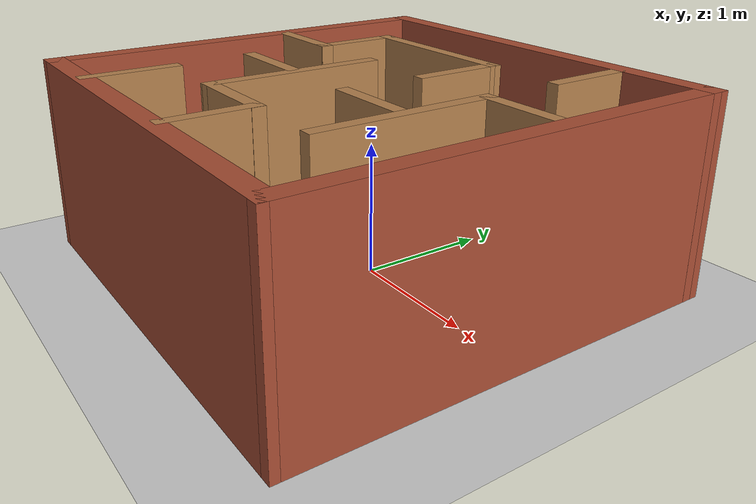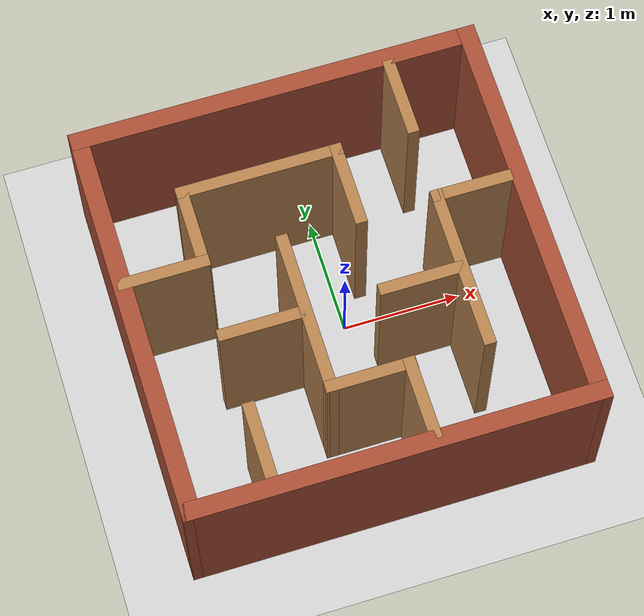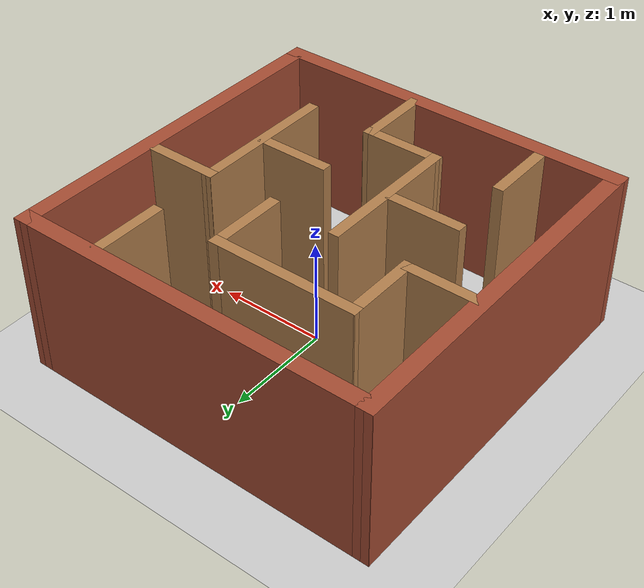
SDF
<sdf version="1.7">
 <world name="default">
  <plugin filename="gz-sim-physics-system" name="gz::sim::systems::Physics"/>
  <plugin filename="gz-sim-sensors-system" name="gz::sim::systems::Sensors">
   <render_engine>ogre2</render_engine>
  </plugin>
  <plugin filename="gz-sim-user-commands-system" name="gz::sim::systems::UserCommands"/>
  <plugin filename="gz-sim-scene-broadcaster-system" name="gz::sim::systems::SceneBroadcaster"/>
  <model name="ground_plane">
   <static>1</static>
   <link name="link">
    <collision name="collision">
     <geometry><plane><normal>0 0 1</normal><size>100 100</size></plane></geometry>
     <surface><friction><ode><mu>100</mu><mu2>50</mu2></ode></friction></surface>
    </collision>
    <visual name="visual">
     <cast_shadows>0</cast_shadows>
     <geometry><plane><normal>0 0 1</normal><size>100 100</size></plane></geometry>
     <material>
      <script><uri>file://media/materials/scripts/gazebo.material</uri><name>Gazebo/Grey</name></script>
     </material>
    </visual>
   </link>
  </model>
  <light name="sun" type="directional">
   <pose>0 0 10 0 -0 0</pose>
   <diffuse>0.8 0.8 0.8 1</diffuse>
   <specular>0.2 0.2 0.2 1</specular>
   <attenuation>
    <range>1000</range>
    <constant>0.9</constant>
    <linear>0.01</linear>
    <quadratic>0.001</quadratic>
   </attenuation>
   <direction>-0.5 0.1 -0.9</direction>
   <spot><inner_angle>0</inner_angle><outer_angle>0</outer_angle><falloff>0</falloff></spot>
  </light>
  <scene><shadows>0</shadows><ambient>0.4 0.4 0.4 1</ambient><background>0.7 0.7 0.7 1</background></scene>
  <physics type="ode">
   <real_time_update_rate>1000</real_time_update_rate>
   <max_step_size>0.001</max_step_size>
   <real_time_factor>1</real_time_factor>
   <ode>
    <solver>
     <type>quick</type>
     <iters>150</iters>
     <precon_iters>0</precon_iters>
     <sor>1.4</sor>
     <use_dynamic_moi_rescaling>1</use_dynamic_moi_rescaling>
    </solver>
    <constraints>
     <cfm>1e-05</cfm>
     <erp>0.2</erp>
     <contact_max_correcting_vel>2000</contact_max_correcting_vel>
     <contact_surface_layer>0.01</contact_surface_layer>
    </constraints>
   </ode>
  </physics>
  <gravity>0 0 -9.8</gravity>
  <magnetic_field>6e-06 2.3e-05 -4.2e-05</magnetic_field>
  <atmosphere type="adiabatic"/>
  <audio><device>default</device></audio>
  <spherical_coordinates>
   <surface_model>EARTH_WGS84</surface_model>
   <latitude_deg>0</latitude_deg>
   <longitude_deg>0</longitude_deg>
   <elevation>0</elevation>
   <heading_deg>0</heading_deg>
  </spherical_coordinates>
  <model name="mapcorreg">
   <model name="newmap">
    <link name="Wall_11">
     <collision name="Wall_11_Collision">
      <geometry><box><size>3.40462 0.15 1.5</size></box></geometry>
      <pose>0 0 0.75 0 -0 0</pose>
     </collision>
     <visual name="Wall_11_Visual">
      <pose>0 0 0.75 0 -0 0</pose>
      <geometry><box><size>3.40462 0.15 1.5</size></box></geometry>
      <material>
       <script><uri>file://media/materials/scripts/gazebo.material</uri><name>Gazebo/Bricks</name></script>
       <ambient>1 1 1 1</ambient>
      </material>
      <meta><layer>0</layer></meta>
     </visual>
     <pose>-1.64015 -0.000466 0 0 -0 -1.56953</pose>
    </link>
    <link name="Wall_14">
     <collision name="Wall_14_Collision">
      <geometry><box><size>3.40557 0.15 1.5</size></box></geometry>
      <pose>0 0 0.75 0 -0 0</pose>
     </collision>
     <visual name="Wall_14_Visual">
      <pose>0 0 0.75 0 -0 0</pose>
      <geometry><box><size>3.40557 0.15 1.5</size></box></geometry>
      <material>
       <script><uri>file://media/materials/scripts/gazebo.material</uri><name>Gazebo/Bricks</name></script>
       <ambient>1 1 1 1</ambient>
      </material>
      <meta><layer>0</layer></meta>
     </visual>
     <pose>1.64026 -0 0 0 -0 1.5696</pose>
    </link>
    <link name="Wall_15">
     <collision name="Wall_15_Collision">
      <geometry><box><size>3.4301 0.15 1.5</size></box></geometry>
      <pose>0 0 0.75 0 -0 0</pose>
     </collision>
     <visual name="Wall_15_Visual">
      <pose>0 0 0.75 0 -0 0</pose>
      <geometry><box><size>3.4301 0.15 1.5</size></box></geometry>
      <material>
       <script><uri>file://media/materials/scripts/gazebo.material</uri><name>Gazebo/Bricks</name></script>
       <ambient>1 1 1 1</ambient>
      </material>
      <meta><layer>0</layer></meta>
     </visual>
     <pose>0.002164 1.62731 0 0 -0 -3.14131</pose>
    </link>
    <link name="Wall_17">
     <collision name="Wall_17_Collision">
      <geometry><box><size>0.752829 0.1 1.5</size></box></geometry>
      <pose>0 0 0.75 0 -0 0</pose>
     </collision>
     <visual name="Wall_17_Visual">
      <pose>0 0 0.75 0 -0 0</pose>
      <geometry><box><size>0.752829 0.1 1.5</size></box></geometry>
      <material>
       <script><uri>file://media/materials/scripts/gazebo.material</uri><name>Gazebo/Wood</name></script>
       <ambient>1 1 1 1</ambient>
      </material>
      <meta><layer>0</layer></meta>
     </visual>
     <pose>-1.30426 0.31789 0 0 -0 0.000206</pose>
    </link>
    <link name="Wall_19">
     <collision name="Wall_19_Collision">
      <geometry><box><size>0.725857 0.1 1.5</size></box></geometry>
      <pose>0 0 0.75 0 -0 0</pose>
     </collision>
     <visual name="Wall_19_Visual">
      <pose>0 0 0.75 0 -0 0</pose>
      <geometry><box><size>0.725857 0.1 1.5</size></box></geometry>
      <material>
       <script><uri>file://media/materials/scripts/gazebo.material</uri><name>Gazebo/Wood</name></script>
       <ambient>1 1 1 1</ambient>
      </material>
      <meta><layer>0</layer></meta>
     </visual>
     <pose>-0.977516 0.630957 0 0 -0 1.5692</pose>
    </link>
    <link name="Wall_21">
     <collision name="Wall_21_Collision">
      <geometry><box><size>1.38594 0.1 1.5</size></box></geometry>
      <pose>0 0 0.75 0 -0 0</pose>
     </collision>
     <visual name="Wall_21_Visual">
      <pose>0 0 0.75 0 -0 0</pose>
      <geometry><box><size>1.38594 0.1 1.5</size></box></geometry>
      <material>
       <script><uri>file://media/materials/scripts/gazebo.material</uri><name>Gazebo/Wood</name></script>
       <ambient>1 1 1 1</ambient>
      </material>
      <meta><layer>0</layer></meta>
     </visual>
     <pose>-0.334045 0.944184 0 0 -0 0.000352</pose>
    </link>
    <link name="Wall_22">
     <collision name="Wall_22_Collision">
      <geometry><box><size>0.725455 0.1 1.5</size></box></geometry>
      <pose>0 0 0.75 0 -0 0</pose>
     </collision>
     <visual name="Wall_22_Visual">
      <pose>0 0 0.75 0 -0 0</pose>
      <geometry><box><size>0.725455 0.1 1.5</size></box></geometry>
      <material>
       <script><uri>file://media/materials/scripts/gazebo.material</uri><name>Gazebo/Wood</name></script>
       <ambient>1 1 1 1</ambient>
      </material>
      <meta><layer>0</layer></meta>
     </visual>
     <pose>0.308926 0.631721 0 0 -0 -1.5708</pose>
    </link>
    <link name="Wall_24">
     <collision name="Wall_24_Collision">
      <geometry><box><size>0.687721 0.1 1.5</size></box></geometry>
      <pose>0 0 0.75 0 -0 0</pose>
     </collision>
     <visual name="Wall_24_Visual">
      <pose>0 0 0.75 0 -0 0</pose>
      <geometry><box><size>0.687721 0.1 1.5</size></box></geometry>
      <material>
       <script><uri>file://media/materials/scripts/gazebo.material</uri><name>Gazebo/Wood</name></script>
       <ambient>1 1 1 1</ambient>
      </material>
      <meta><layer>0</layer></meta>
     </visual>
     <pose>0.947339 1.2511 0 0 -0 1.57201</pose>
    </link>
    <link name="Wall_28">
     <collision name="Wall_28_Collision">
      <geometry><box><size>0.745 0.1 1.5</size></box></geometry>
      <pose>0 0 0.75 0 -0 0</pose>
     </collision>
     <visual name="Wall_28_Visual">
      <pose>0 0 0.75 0 -0 0</pose>
      <geometry><box><size>0.745 0.1 1.5</size></box></geometry>
      <material>
       <script><uri>file://media/materials/scripts/gazebo.material</uri><name>Gazebo/Wood</name></script>
       <ambient>1 1 1 1</ambient>
      </material>
      <meta><layer>0</layer></meta>
     </visual>
     <pose>-0.979016 -1.29154 0 0 -0 1.5708</pose>
    </link>
    <link name="Wall_31">
     <collision name="Wall_31_Collision">
      <geometry><box><size>0.675002 0.1 1.5</size></box></geometry>
      <pose>0 0 0.75 0 -0 0</pose>
     </collision>
     <visual name="Wall_31_Visual">
      <pose>0 0 0.75 0 -0 0</pose>
      <geometry><box><size>0.675002 0.1 1.5</size></box></geometry>
      <material>
       <script><uri>file://media/materials/scripts/gazebo.material</uri><name>Gazebo/Wood</name></script>
       <ambient>1 1 1 1</ambient>
      </material>
      <meta><layer>0</layer></meta>
     </visual>
     <pose>1.24148 0.319709 0 0 -0 -0.002614</pose>
    </link>
    <link name="Wall_33">
     <collision name="Wall_33_Collision">
      <geometry><box><size>1.38128 0.1 1.5</size></box></geometry>
      <pose>0 0 0.75 0 -0 0</pose>
     </collision>
     <visual name="Wall_33_Visual">
      <pose>0 0 0.75 0 -0 0</pose>
      <geometry><box><size>1.38128 0.1 1.5</size></box></geometry>
      <material>
       <script><uri>file://media/materials/scripts/gazebo.material</uri><name>Gazebo/Wood</name></script>
       <ambient>1 1 1 1</ambient>
      </material>
      <meta><layer>0</layer></meta>
     </visual>
     <pose>0.950833 -0.320178 0 0 -0 -1.57061</pose>
    </link>
    <link name="Wall_35">
     <collision name="Wall_35_Collision">
      <geometry><box><size>0.7 0.1 1.5</size></box></geometry>
      <pose>0 0 0.75 0 -0 0</pose>
     </collision>
     <visual name="Wall_35_Visual">
      <pose>0 0 0.75 0 -0 0</pose>
      <geometry><box><size>0.7 0.1 1.5</size></box></geometry>
      <material>
       <script><uri>file://media/materials/scripts/gazebo.material</uri><name>Gazebo/Wood</name></script>
       <ambient>1 1 1 1</ambient>
      </material>
      <meta><layer>0</layer></meta>
     </visual>
     <pose>0.611293 -0.323043 0 0 -0 3.14159</pose>
    </link>
    <link name="Wall_37">
     <collision name="Wall_37_Collision">
      <geometry><box><size>0.700009 0.1 1.5</size></box></geometry>
      <pose>0 0 0.75 0 -0 0</pose>
     </collision>
     <visual name="Wall_37_Visual">
      <pose>0 0 0.75 0 -0 0</pose>
      <geometry><box><size>0.700009 0.1 1.5</size></box></geometry>
      <material>
       <script><uri>file://media/materials/scripts/gazebo.material</uri><name>Gazebo/Wood</name></script>
       <ambient>1 1 1 1</ambient>
      </material>
      <meta><layer>0</layer></meta>
     </visual>
     <pose>0.309349 -1.27704 0 0 -0 -1.56535</pose>
    </link>
    <link name="Wall_39">
     <collision name="Wall_39_Collision">
      <geometry><box><size>0.741335 0.1 1.5</size></box></geometry>
      <pose>0 0 0.75 0 -0 0</pose>
     </collision>
     <visual name="Wall_39_Visual">
      <pose>0 0 0.75 0 -0 0</pose>
      <geometry><box><size>0.741335 0.1 1.5</size></box></geometry>
      <material>
       <script><uri>file://media/materials/scripts/gazebo.material</uri><name>Gazebo/Wood</name></script>
       <ambient>1 1 1 1</ambient>
      </material>
      <meta><layer>0</layer></meta>
     </visual>
     <pose>-0.009684 -0.977178 0 0 -0 -3.14117</pose>
    </link>
    <link name="Wall_41">
     <collision name="Wall_41_Collision">
      <geometry><box><size>1.38197 0.1 1.5</size></box></geometry>
      <pose>0 0 0.75 0 -0 0</pose>
     </collision>
     <visual name="Wall_41_Visual">
      <pose>0 0 0.75 0 -0 0</pose>
      <geometry><box><size>1.38197 0.1 1.5</size></box></geometry>
      <material>
       <script><uri>file://media/materials/scripts/gazebo.material</uri><name>Gazebo/Wood</name></script>
       <ambient>1 1 1 1</ambient>
      </material>
      <meta><layer>0</layer></meta>
     </visual>
     <pose>-0.330352 -0.33634 0 0 -0 1.5708</pose>
    </link>
    <link name="Wall_43">
     <collision name="Wall_43_Collision">
      <geometry><box><size>0.700497 0.1 1.5</size></box></geometry>
      <pose>0 0 0.75 0 -0 0</pose>
     </collision>
     <visual name="Wall_43_Visual">
      <pose>0 0 0.75 0 -0 0</pose>
      <geometry><box><size>0.700497 0.1 1.5</size></box></geometry>
      <material>
       <script><uri>file://media/materials/scripts/gazebo.material</uri><name>Gazebo/Wood</name></script>
       <ambient>1 1 1 1</ambient>
      </material>
      <meta><layer>0</layer></meta>
     </visual>
     <pose>-0.700016 -0.323043 0 0 -0 0</pose>
    </link>
    <link name="Wall_8">
     <collision name="Wall_8_Collision">
      <geometry><box><size>3.42639 0.15 1.5</size></box></geometry>
      <pose>0 0 0.75 0 -0 0</pose>
     </collision>
     <visual name="Wall_8_Visual">
      <pose>0 0 0.75 0 -0 0</pose>
      <geometry><box><size>3.42639 0.15 1.5</size></box></geometry>
      <material>
       <script><uri>file://media/materials/scripts/gazebo.material</uri><name>Gazebo/Bricks</name></script>
       <ambient>1 1 1 1</ambient>
      </material>
      <meta><layer>0</layer></meta>
     </visual>
     <pose>0.000106 -1.62777 0 0 -0 0</pose>
    </link>
    <static>1</static>
   </model>
   <static>0</static>
   <pose>-0.098953 -0.033482 0 0 -0 0</pose>
  </model>
 </world>
</sdf>
